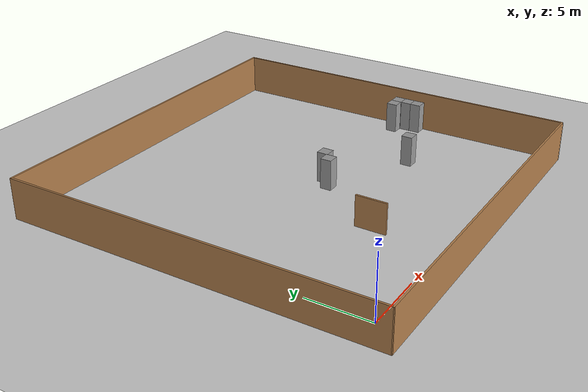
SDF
<sdf version="1.7">
 <world name="default">
  <model name="ground_plane">
   <static>1</static>
   <link name="link">
    <collision name="collision">
     <geometry><plane><normal>0 0 1</normal><size>100 100</size></plane></geometry>
     <surface><friction><ode><mu>100</mu><mu2>50</mu2></ode></friction></surface>
    </collision>
    <visual name="visual">
     <cast_shadows>0</cast_shadows>
     <geometry><plane><normal>0 0 1</normal><size>100 100</size></plane></geometry>
     <material>
      <script><uri>file://media/materials/scripts/gazebo.material</uri><name>Gazebo/Grey</name></script>
     </material>
    </visual>
   </link>
  </model>
  <model name="Untitled_0_clone_clone">
   <link name="Wall_31">
    <pose>-14.9249 0 0 0 0 -1.56374</pose>
    <inertial>
     <mass>1</mass>
     <inertia><ixx>1</ixx><ixy>0</ixy><ixz>0</ixz><iyy>1</iyy><iyz>0</iyz><izz>1</izz></inertia>
    </inertial>
    <visual name="Wall_31_Visual">
     <pose>0 0 1.25 0 -0 0</pose>
     <geometry><box><size>30.0711 0.15 4</size></box></geometry>
     <material>
      <script><uri>file://media/materials/scripts/gazebo.material</uri><name>Gazebo/Wood</name></script>
      <ambient>1 1 1 1</ambient>
      <shader type="pixel"><normal_map>__default__</normal_map></shader>
      <diffuse>0.7 0.7 0.7 1</diffuse>
      <specular>0.01 0.01 0.01 1</specular>
      <emissive>0 0 0 1</emissive>
     </material>
     <meta><layer>0</layer></meta>
    </visual>
    <collision name="Wall_31_Collision">
     <pose>0 0 1.25 0 -0 0</pose>
     <geometry><box><size>30.0711 0.15 4</size></box></geometry>
     <surface>
      <friction>
       <ode><mu>1</mu><mu2>1</mu2><fdir1>0 0 0</fdir1><slip1>0</slip1><slip2>0</slip2></ode>
       <torsional>
        <coefficient>1</coefficient>
        <patch_radius>0</patch_radius>
        <surface_radius>0</surface_radius>
        <use_patch_radius>1</use_patch_radius>
        <ode><slip>0</slip></ode>
       </torsional>
      </friction>
      <bounce><restitution_coefficient>0</restitution_coefficient><threshold>1e+06</threshold></bounce>
      <contact>
       <collide_without_contact>0</collide_without_contact>
       <collide_without_contact_bitmask>1</collide_without_contact_bitmask>
       <collide_bitmask>1</collide_bitmask>
       <ode>
        <soft_cfm>0</soft_cfm>
        <soft_erp>0.2</soft_erp>
        <kp>1e+13</kp>
        <kd>1</kd>
        <max_vel>0.01</max_vel>
        <min_depth>0</min_depth>
       </ode>
       <bullet>
        <split_impulse>1</split_impulse>
        <split_impulse_penetration_threshold>-0.01</split_impulse_penetration_threshold>
        <soft_cfm>0</soft_cfm>
        <soft_erp>0.2</soft_erp>
        <kp>1e+13</kp>
        <kd>1</kd>
       </bullet>
      </contact>
     </surface>
    </collision>
   </link>
   <link name="Wall_32">
    <pose>0.105683 -14.9481 0 0 -0 0.000807</pose>
    <inertial>
     <mass>1</mass>
     <inertia><ixx>1</ixx><ixy>0</ixy><ixz>0</ixz><iyy>1</iyy><iyz>0</iyz><izz>1</izz></inertia>
    </inertial>
    <visual name="Wall_32_Visual">
     <pose>0 0 1.25 0 -0 0</pose>
     <geometry><box><size>30 0.15 4</size></box></geometry>
     <material>
      <script><uri>file://media/materials/scripts/gazebo.material</uri><name>Gazebo/Wood</name></script>
      <ambient>1 1 1 1</ambient>
      <shader type="pixel"><normal_map>__default__</normal_map></shader>
      <diffuse>0.7 0.7 0.7 1</diffuse>
      <specular>0.01 0.01 0.01 1</specular>
      <emissive>0 0 0 1</emissive>
     </material>
     <meta><layer>0</layer></meta>
    </visual>
    <collision name="Wall_32_Collision">
     <pose>0 0 1.25 0 -0 0</pose>
     <geometry><box><size>30 0.15 4</size></box></geometry>
     <surface>
      <friction>
       <ode><mu>1</mu><mu2>1</mu2><fdir1>0 0 0</fdir1><slip1>0</slip1><slip2>0</slip2></ode>
       <torsional>
        <coefficient>1</coefficient>
        <patch_radius>0</patch_radius>
        <surface_radius>0</surface_radius>
        <use_patch_radius>1</use_patch_radius>
        <ode><slip>0</slip></ode>
       </torsional>
      </friction>
      <bounce><restitution_coefficient>0</restitution_coefficient><threshold>1e+06</threshold></bounce>
      <contact>
       <collide_without_contact>0</collide_without_contact>
       <collide_without_contact_bitmask>1</collide_without_contact_bitmask>
       <collide_bitmask>1</collide_bitmask>
       <ode>
        <soft_cfm>0</soft_cfm>
        <soft_erp>0.2</soft_erp>
        <kp>1e+13</kp>
        <kd>1</kd>
        <max_vel>0.01</max_vel>
        <min_depth>0</min_depth>
       </ode>
       <bullet>
        <split_impulse>1</split_impulse>
        <split_impulse_penetration_threshold>-0.01</split_impulse_penetration_threshold>
        <soft_cfm>0</soft_cfm>
        <soft_erp>0.2</soft_erp>
        <kp>1e+13</kp>
        <kd>1</kd>
       </bullet>
      </contact>
     </surface>
    </collision>
   </link>
   <link name="Wall_33">
    <pose>14.9844 -0.011083 0 0 -0 1.5739</pose>
    <inertial>
     <mass>1</mass>
     <inertia><ixx>1</ixx><ixy>0</ixy><ixz>0</ixz><iyy>1</iyy><iyz>0</iyz><izz>1</izz></inertia>
    </inertial>
    <visual name="Wall_33_Visual">
     <pose>0 0 1.25 0 -0 0</pose>
     <geometry><box><size>30.0001 0.15 4</size></box></geometry>
     <material>
      <script><uri>file://media/materials/scripts/gazebo.material</uri><name>Gazebo/Wood</name></script>
      <ambient>1 1 1 1</ambient>
      <shader type="pixel"><normal_map>__default__</normal_map></shader>
      <diffuse>0.7 0.7 0.7 1</diffuse>
      <specular>0.01 0.01 0.01 1</specular>
      <emissive>0 0 0 1</emissive>
     </material>
     <meta><layer>0</layer></meta>
    </visual>
    <collision name="Wall_33_Collision">
     <pose>0 0 1.25 0 -0 0</pose>
     <geometry><box><size>30.0001 0.15 4</size></box></geometry>
     <surface>
      <friction>
       <ode><mu>1</mu><mu2>1</mu2><fdir1>0 0 0</fdir1><slip1>0</slip1><slip2>0</slip2></ode>
       <torsional>
        <coefficient>1</coefficient>
        <patch_radius>0</patch_radius>
        <surface_radius>0</surface_radius>
        <use_patch_radius>1</use_patch_radius>
        <ode><slip>0</slip></ode>
       </torsional>
      </friction>
      <bounce><restitution_coefficient>0</restitution_coefficient><threshold>1e+06</threshold></bounce>
      <contact>
       <collide_without_contact>0</collide_without_contact>
       <collide_without_contact_bitmask>1</collide_without_contact_bitmask>
       <collide_bitmask>1</collide_bitmask>
       <ode>
        <soft_cfm>0</soft_cfm>
        <soft_erp>0.2</soft_erp>
        <kp>1e+13</kp>
        <kd>1</kd>
        <max_vel>0.01</max_vel>
        <min_depth>0</min_depth>
       </ode>
       <bullet>
        <split_impulse>1</split_impulse>
        <split_impulse_penetration_threshold>-0.01</split_impulse_penetration_threshold>
        <soft_cfm>0</soft_cfm>
        <soft_erp>0.2</soft_erp>
        <kp>1e+13</kp>
        <kd>1</kd>
       </bullet>
      </contact>
     </surface>
    </collision>
   </link>
   <link name="Wall_36">
    <pose>-0.035032 14.9602 0 0 -0 0</pose>
    <inertial>
     <mass>1</mass>
     <inertia><ixx>1</ixx><ixy>0</ixy><ixz>0</ixz><iyy>1</iyy><iyz>0</iyz><izz>1</izz></inertia>
    </inertial>
    <visual name="Wall_36_Visual">
     <pose>0 0 1.25 0 -0 0</pose>
     <geometry><box><size>30 0.15 4</size></box></geometry>
     <material>
      <script><uri>file://media/materials/scripts/gazebo.material</uri><name>Gazebo/Wood</name></script>
      <ambient>1 1 1 1</ambient>
      <shader type="pixel"><normal_map>__default__</normal_map></shader>
      <diffuse>0.7 0.7 0.7 1</diffuse>
      <specular>0.01 0.01 0.01 1</specular>
      <emissive>0 0 0 1</emissive>
     </material>
     <meta><layer>0</layer></meta>
    </visual>
    <collision name="Wall_36_Collision">
     <pose>0 0 1.25 0 -0 0</pose>
     <geometry><box><size>30 0.15 4</size></box></geometry>
     <surface>
      <friction>
       <ode><mu>1</mu><mu2>1</mu2><fdir1>0 0 0</fdir1><slip1>0</slip1><slip2>0</slip2></ode>
       <torsional>
        <coefficient>1</coefficient>
        <patch_radius>0</patch_radius>
        <surface_radius>0</surface_radius>
        <use_patch_radius>1</use_patch_radius>
        <ode><slip>0</slip></ode>
       </torsional>
      </friction>
      <bounce><restitution_coefficient>0</restitution_coefficient><threshold>1e+06</threshold></bounce>
      <contact>
       <collide_without_contact>0</collide_without_contact>
       <collide_without_contact_bitmask>1</collide_without_contact_bitmask>
       <collide_bitmask>1</collide_bitmask>
       <ode>
        <soft_cfm>0</soft_cfm>
        <soft_erp>0.2</soft_erp>
        <kp>1e+13</kp>
        <kd>1</kd>
        <max_vel>0.01</max_vel>
        <min_depth>0</min_depth>
       </ode>
       <bullet>
        <split_impulse>1</split_impulse>
        <split_impulse_penetration_threshold>-0.01</split_impulse_penetration_threshold>
        <soft_cfm>0</soft_cfm>
        <soft_erp>0.2</soft_erp>
        <kp>1e+13</kp>
        <kd>1</kd>
       </bullet>
      </contact>
     </surface>
    </collision>
   </link>
   <static>1</static>
   <pose>12.7356 12.8186 0 0 -0 0</pose>
  </model>
  <model name="Untitled_0_clone_clone_0">
   <link name="Wall_7_clone_clone_clone">
    <pose>-2.0846 -3.67298 0 0 -0 0</pose>
    <inertial>
     <mass>1</mass>
     <inertia><ixx>1</ixx><ixy>0</ixy><ixz>0</ixz><iyy>1</iyy><iyz>0</iyz><izz>1</izz></inertia>
    </inertial>
    <visual name="Wall_7_Visual">
     <pose>0 0 1.25 0 -0 1.5707</pose>
     <geometry><box><size>2.5 0.15 2.5</size></box></geometry>
     <material>
      <script><uri>file://media/materials/scripts/gazebo.material</uri><name>Gazebo/Wood</name></script>
      <ambient>1 1 1 1</ambient>
      <shader type="pixel"><normal_map>__default__</normal_map></shader>
      <diffuse>1 1 1 1</diffuse>
      <specular>0.2 0.2 0.2 1</specular>
      <emissive>0 0 0 1</emissive>
     </material>
     <meta><layer>0</layer></meta>
    </visual>
    <collision name="Wall_7_Collision">
     <pose>0 0 1.25 0 -0 1.57079</pose>
     <geometry><box><size>2.5 0.15 2.5</size></box></geometry>
     <surface>
      <friction>
       <ode><mu>1</mu><mu2>1</mu2><fdir1>0 0 0</fdir1><slip1>0</slip1><slip2>0</slip2></ode>
       <torsional>
        <coefficient>1</coefficient>
        <patch_radius>0</patch_radius>
        <surface_radius>0</surface_radius>
        <use_patch_radius>1</use_patch_radius>
        <ode><slip>0</slip></ode>
       </torsional>
      </friction>
      <bounce><restitution_coefficient>0</restitution_coefficient><threshold>1e+06</threshold></bounce>
      <contact>
       <collide_without_contact>0</collide_without_contact>
       <collide_without_contact_bitmask>1</collide_without_contact_bitmask>
       <collide_bitmask>1</collide_bitmask>
       <ode>
        <soft_cfm>0</soft_cfm>
        <soft_erp>0.2</soft_erp>
        <kp>1e+13</kp>
        <kd>1</kd>
        <max_vel>0.01</max_vel>
        <min_depth>0</min_depth>
       </ode>
       <bullet>
        <split_impulse>1</split_impulse>
        <split_impulse_penetration_threshold>-0.01</split_impulse_penetration_threshold>
        <soft_cfm>0</soft_cfm>
        <soft_erp>0.2</soft_erp>
        <kp>1e+13</kp>
        <kd>1</kd>
       </bullet>
      </contact>
     </surface>
    </collision>
   </link>
   <static>1</static>
   <pose>11.6372 9.09473 0 0 -0 0</pose>
  </model>
  <model name="unit_box">
   <link name="link_clone_0_clone_clone_3_clone_2_clone_32">
    <inertial>
     <mass>1</mass>
     <inertia>
      <ixx>0.166667</ixx>
      <ixy>0</ixy>
      <ixz>0</ixz>
      <iyy>0.166667</iyy>
      <iyz>0</iyz>
      <izz>0.166667</izz>
     </inertia>
    </inertial>
    <pose>19.6438 11.8163 0 0 -0 0</pose>
    <visual name="visual">
     <geometry><box><size>0.9 0.9 4</size></box></geometry>
     <material>
      <script><name>Gazebo/Grey</name><uri>file://media/materials/scripts/gazebo.material</uri></script>
      <shader type="pixel"><normal_map>__default__</normal_map></shader>
      <ambient>0.3 0.3 0.3 1</ambient>
      <diffuse>0.7 0.7 0.7 1</diffuse>
      <specular>0.01 0.01 0.01 1</specular>
      <emissive>0 0 0 1</emissive>
     </material>
    </visual>
    <collision name="collision">
     <geometry><box><size>0.9 0.9 4</size></box></geometry>
     <surface>
      <friction>
       <ode><mu>1</mu><mu2>1</mu2><fdir1>0 0 0</fdir1><slip1>0</slip1><slip2>0</slip2></ode>
       <torsional>
        <coefficient>1</coefficient>
        <patch_radius>0</patch_radius>
        <surface_radius>0</surface_radius>
        <use_patch_radius>1</use_patch_radius>
        <ode><slip>0</slip></ode>
       </torsional>
      </friction>
      <bounce><restitution_coefficient>0</restitution_coefficient><threshold>1e+06</threshold></bounce>
      <contact>
       <collide_without_contact>0</collide_without_contact>
       <collide_without_contact_bitmask>1</collide_without_contact_bitmask>
       <collide_bitmask>1</collide_bitmask>
       <ode>
        <soft_cfm>0</soft_cfm>
        <soft_erp>0.2</soft_erp>
        <kp>1e+13</kp>
        <kd>1</kd>
        <max_vel>0.01</max_vel>
        <min_depth>0</min_depth>
       </ode>
       <bullet>
        <split_impulse>1</split_impulse>
        <split_impulse_penetration_threshold>-0.01</split_impulse_penetration_threshold>
        <soft_cfm>0</soft_cfm>
        <soft_erp>0.2</soft_erp>
        <kp>1e+13</kp>
        <kd>1</kd>
       </bullet>
      </contact>
     </surface>
    </collision>
   </link>
   <link name="link_clone_0_clone_clone_3_clone_2_clone_37">
    <inertial>
     <mass>1</mass>
     <inertia>
      <ixx>0.166667</ixx>
      <ixy>0</ixy>
      <ixz>0</ixz>
      <iyy>0.166667</iyy>
      <iyz>0</iyz>
      <izz>0.166667</izz>
     </inertia>
    </inertial>
    <pose>13.2375 9.46863 0 0 -0 0</pose>
    <visual name="visual">
     <geometry><box><size>0.9 0.9 4</size></box></geometry>
     <material>
      <script><name>Gazebo/Grey</name><uri>file://media/materials/scripts/gazebo.material</uri></script>
      <shader type="pixel"><normal_map>__default__</normal_map></shader>
      <ambient>0.3 0.3 0.3 1</ambient>
      <diffuse>0.7 0.7 0.7 1</diffuse>
      <specular>0.01 0.01 0.01 1</specular>
      <emissive>0 0 0 1</emissive>
     </material>
    </visual>
    <collision name="collision">
     <geometry><box><size>0.9 0.9 4</size></box></geometry>
     <surface>
      <friction>
       <ode><mu>1</mu><mu2>1</mu2><fdir1>0 0 0</fdir1><slip1>0</slip1><slip2>0</slip2></ode>
       <torsional>
        <coefficient>1</coefficient>
        <patch_radius>0</patch_radius>
        <surface_radius>0</surface_radius>
        <use_patch_radius>1</use_patch_radius>
        <ode><slip>0</slip></ode>
       </torsional>
      </friction>
      <bounce><restitution_coefficient>0</restitution_coefficient><threshold>1e+06</threshold></bounce>
      <contact>
       <collide_without_contact>0</collide_without_contact>
       <collide_without_contact_bitmask>1</collide_without_contact_bitmask>
       <collide_bitmask>1</collide_bitmask>
       <ode>
        <soft_cfm>0</soft_cfm>
        <soft_erp>0.2</soft_erp>
        <kp>1e+13</kp>
        <kd>1</kd>
        <max_vel>0.01</max_vel>
        <min_depth>0</min_depth>
       </ode>
       <bullet>
        <split_impulse>1</split_impulse>
        <split_impulse_penetration_threshold>-0.01</split_impulse_penetration_threshold>
        <soft_cfm>0</soft_cfm>
        <soft_erp>0.2</soft_erp>
        <kp>1e+13</kp>
        <kd>1</kd>
       </bullet>
      </contact>
     </surface>
    </collision>
   </link>
   <link name="link_clone_0_clone_clone_3_clone_2_clone_39">
    <inertial>
     <mass>1</mass>
     <inertia>
      <ixx>0.166667</ixx>
      <ixy>0</ixy>
      <ixz>0</ixz>
      <iyy>0.166667</iyy>
      <iyz>0</iyz>
      <izz>0.166667</izz>
     </inertia>
    </inertial>
    <pose>19.6362 12.7063 0 0 -0 0</pose>
    <visual name="visual">
     <geometry><box><size>0.9 0.9 4</size></box></geometry>
     <material>
      <script><name>Gazebo/Grey</name><uri>file://media/materials/scripts/gazebo.material</uri></script>
      <shader type="pixel"><normal_map>__default__</normal_map></shader>
      <ambient>0.3 0.3 0.3 1</ambient>
      <diffuse>0.7 0.7 0.7 1</diffuse>
      <specular>0.01 0.01 0.01 1</specular>
      <emissive>0 0 0 1</emissive>
     </material>
    </visual>
    <collision name="collision">
     <geometry><box><size>0.9 0.9 4</size></box></geometry>
     <surface>
      <friction>
       <ode><mu>1</mu><mu2>1</mu2><fdir1>0 0 0</fdir1><slip1>0</slip1><slip2>0</slip2></ode>
       <torsional>
        <coefficient>1</coefficient>
        <patch_radius>0</patch_radius>
        <surface_radius>0</surface_radius>
        <use_patch_radius>1</use_patch_radius>
        <ode><slip>0</slip></ode>
       </torsional>
      </friction>
      <bounce><restitution_coefficient>0</restitution_coefficient><threshold>1e+06</threshold></bounce>
      <contact>
       <collide_without_contact>0</collide_without_contact>
       <collide_without_contact_bitmask>1</collide_without_contact_bitmask>
       <collide_bitmask>1</collide_bitmask>
       <ode>
        <soft_cfm>0</soft_cfm>
        <soft_erp>0.2</soft_erp>
        <kp>1e+13</kp>
        <kd>1</kd>
        <max_vel>0.01</max_vel>
        <min_depth>0</min_depth>
       </ode>
       <bullet>
        <split_impulse>1</split_impulse>
        <split_impulse_penetration_threshold>-0.01</split_impulse_penetration_threshold>
        <soft_cfm>0</soft_cfm>
        <soft_erp>0.2</soft_erp>
        <kp>1e+13</kp>
        <kd>1</kd>
       </bullet>
      </contact>
     </surface>
    </collision>
   </link>
   <link name="link_clone_0_clone_clone_3_clone_2_clone_40">
    <inertial>
     <mass>1</mass>
     <inertia>
      <ixx>0.166667</ixx>
      <ixy>0</ixy>
      <ixz>0</ixz>
      <iyy>0.166667</iyy>
      <iyz>0</iyz>
      <izz>0.166667</izz>
     </inertia>
    </inertial>
    <pose>19.6349 13.5789 0 0 -0 0</pose>
    <visual name="visual">
     <geometry><box><size>0.9 0.9 4</size></box></geometry>
     <material>
      <script><name>Gazebo/Grey</name><uri>file://media/materials/scripts/gazebo.material</uri></script>
      <shader type="pixel"><normal_map>__default__</normal_map></shader>
      <ambient>0.3 0.3 0.3 1</ambient>
      <diffuse>0.7 0.7 0.7 1</diffuse>
      <specular>0.01 0.01 0.01 1</specular>
      <emissive>0 0 0 1</emissive>
     </material>
    </visual>
    <collision name="collision">
     <geometry><box><size>0.9 0.9 4</size></box></geometry>
     <surface>
      <friction>
       <ode><mu>1</mu><mu2>1</mu2><fdir1>0 0 0</fdir1><slip1>0</slip1><slip2>0</slip2></ode>
       <torsional>
        <coefficient>1</coefficient>
        <patch_radius>0</patch_radius>
        <surface_radius>0</surface_radius>
        <use_patch_radius>1</use_patch_radius>
        <ode><slip>0</slip></ode>
       </torsional>
      </friction>
      <bounce><restitution_coefficient>0</restitution_coefficient><threshold>1e+06</threshold></bounce>
      <contact>
       <collide_without_contact>0</collide_without_contact>
       <collide_without_contact_bitmask>1</collide_without_contact_bitmask>
       <collide_bitmask>1</collide_bitmask>
       <ode>
        <soft_cfm>0</soft_cfm>
        <soft_erp>0.2</soft_erp>
        <kp>1e+13</kp>
        <kd>1</kd>
        <max_vel>0.01</max_vel>
        <min_depth>0</min_depth>
       </ode>
       <bullet>
        <split_impulse>1</split_impulse>
        <split_impulse_penetration_threshold>-0.01</split_impulse_penetration_threshold>
        <soft_cfm>0</soft_cfm>
        <soft_erp>0.2</soft_erp>
        <kp>1e+13</kp>
        <kd>1</kd>
       </bullet>
      </contact>
     </surface>
    </collision>
   </link>
   <link name="link_clone_0_clone_clone_3_clone_2_clone_42">
    <inertial>
     <mass>1</mass>
     <inertia>
      <ixx>0.166667</ixx>
      <ixy>0</ixy>
      <ixz>0</ixz>
      <iyy>0.166667</iyy>
      <iyz>0</iyz>
      <izz>0.166667</izz>
     </inertia>
    </inertial>
    <pose>18.7644 13.5939 0 0 -0 0</pose>
    <visual name="visual">
     <geometry><box><size>0.9 0.9 4</size></box></geometry>
     <material>
      <script><name>Gazebo/Grey</name><uri>file://media/materials/scripts/gazebo.material</uri></script>
      <shader type="pixel"><normal_map>__default__</normal_map></shader>
      <ambient>0.3 0.3 0.3 1</ambient>
      <diffuse>0.7 0.7 0.7 1</diffuse>
      <specular>0.01 0.01 0.01 1</specular>
      <emissive>0 0 0 1</emissive>
     </material>
    </visual>
    <collision name="collision">
     <geometry><box><size>0.9 0.9 4</size></box></geometry>
     <surface>
      <friction>
       <ode><mu>1</mu><mu2>1</mu2><fdir1>0 0 0</fdir1><slip1>0</slip1><slip2>0</slip2></ode>
       <torsional>
        <coefficient>1</coefficient>
        <patch_radius>0</patch_radius>
        <surface_radius>0</surface_radius>
        <use_patch_radius>1</use_patch_radius>
        <ode><slip>0</slip></ode>
       </torsional>
      </friction>
      <bounce><restitution_coefficient>0</restitution_coefficient><threshold>1e+06</threshold></bounce>
      <contact>
       <collide_without_contact>0</collide_without_contact>
       <collide_without_contact_bitmask>1</collide_without_contact_bitmask>
       <collide_bitmask>1</collide_bitmask>
       <ode>
        <soft_cfm>0</soft_cfm>
        <soft_erp>0.2</soft_erp>
        <kp>1e+13</kp>
        <kd>1</kd>
        <max_vel>0.01</max_vel>
        <min_depth>0</min_depth>
       </ode>
       <bullet>
        <split_impulse>1</split_impulse>
        <split_impulse_penetration_threshold>-0.01</split_impulse_penetration_threshold>
        <soft_cfm>0</soft_cfm>
        <soft_erp>0.2</soft_erp>
        <kp>1e+13</kp>
        <kd>1</kd>
       </bullet>
      </contact>
     </surface>
    </collision>
   </link>
   <link name="link_clone_0_clone_clone_3_clone_2_clone_54">
    <inertial>
     <mass>1</mass>
     <inertia>
      <ixx>0.166667</ixx>
      <ixy>0</ixy>
      <ixz>0</ixz>
      <iyy>0.166667</iyy>
      <iyz>0</iyz>
      <izz>0.166667</izz>
     </inertia>
    </inertial>
    <pose>6.24208 12.8125 0 0 -0 0</pose>
    <visual name="visual">
     <geometry><box><size>0.9 0.9 4</size></box></geometry>
     <material>
      <script><name>Gazebo/Grey</name><uri>file://media/materials/scripts/gazebo.material</uri></script>
      <shader type="pixel"><normal_map>__default__</normal_map></shader>
      <ambient>0.3 0.3 0.3 1</ambient>
      <diffuse>0.7 0.7 0.7 1</diffuse>
      <specular>0.01 0.01 0.01 1</specular>
      <emissive>0 0 0 1</emissive>
     </material>
    </visual>
    <collision name="collision">
     <geometry><box><size>0.9 0.9 4</size></box></geometry>
     <surface>
      <friction>
       <ode><mu>1</mu><mu2>1</mu2><fdir1>0 0 0</fdir1><slip1>0</slip1><slip2>0</slip2></ode>
       <torsional>
        <coefficient>1</coefficient>
        <patch_radius>0</patch_radius>
        <surface_radius>0</surface_radius>
        <use_patch_radius>1</use_patch_radius>
        <ode><slip>0</slip></ode>
       </torsional>
      </friction>
      <bounce><restitution_coefficient>0</restitution_coefficient><threshold>1e+06</threshold></bounce>
      <contact>
       <collide_without_contact>0</collide_without_contact>
       <collide_without_contact_bitmask>1</collide_without_contact_bitmask>
       <collide_bitmask>1</collide_bitmask>
       <ode>
        <soft_cfm>0</soft_cfm>
        <soft_erp>0.2</soft_erp>
        <kp>1e+13</kp>
        <kd>1</kd>
        <max_vel>0.01</max_vel>
        <min_depth>0</min_depth>
       </ode>
       <bullet>
        <split_impulse>1</split_impulse>
        <split_impulse_penetration_threshold>-0.01</split_impulse_penetration_threshold>
        <soft_cfm>0</soft_cfm>
        <soft_erp>0.2</soft_erp>
        <kp>1e+13</kp>
        <kd>1</kd>
       </bullet>
      </contact>
     </surface>
    </collision>
   </link>
   <link name="link_clone_0_clone_clone_3_clone_2_clone_55">
    <inertial>
     <mass>1</mass>
     <inertia>
      <ixx>0.166667</ixx>
      <ixy>0</ixy>
      <ixz>0</ixz>
      <iyy>0.166667</iyy>
      <iyz>0</iyz>
      <izz>0.166667</izz>
     </inertia>
    </inertial>
    <pose>7.11895 13.6193 0 0 -0 0</pose>
    <visual name="visual">
     <geometry><box><size>0.9 0.9 4</size></box></geometry>
     <material>
      <script><name>Gazebo/Grey</name><uri>file://media/materials/scripts/gazebo.material</uri></script>
      <shader type="pixel"><normal_map>__default__</normal_map></shader>
      <ambient>0.3 0.3 0.3 1</ambient>
      <diffuse>0.7 0.7 0.7 1</diffuse>
      <specular>0.01 0.01 0.01 1</specular>
      <emissive>0 0 0 1</emissive>
     </material>
    </visual>
    <collision name="collision">
     <geometry><box><size>0.9 0.9 4</size></box></geometry>
     <surface>
      <friction>
       <ode><mu>1</mu><mu2>1</mu2><fdir1>0 0 0</fdir1><slip1>0</slip1><slip2>0</slip2></ode>
       <torsional>
        <coefficient>1</coefficient>
        <patch_radius>0</patch_radius>
        <surface_radius>0</surface_radius>
        <use_patch_radius>1</use_patch_radius>
        <ode><slip>0</slip></ode>
       </torsional>
      </friction>
      <bounce><restitution_coefficient>0</restitution_coefficient><threshold>1e+06</threshold></bounce>
      <contact>
       <collide_without_contact>0</collide_without_contact>
       <collide_without_contact_bitmask>1</collide_without_contact_bitmask>
       <collide_bitmask>1</collide_bitmask>
       <ode>
        <soft_cfm>0</soft_cfm>
        <soft_erp>0.2</soft_erp>
        <kp>1e+13</kp>
        <kd>1</kd>
        <max_vel>0.01</max_vel>
        <min_depth>0</min_depth>
       </ode>
       <bullet>
        <split_impulse>1</split_impulse>
        <split_impulse_penetration_threshold>-0.01</split_impulse_penetration_threshold>
        <soft_cfm>0</soft_cfm>
        <soft_erp>0.2</soft_erp>
        <kp>1e+13</kp>
        <kd>1</kd>
       </bullet>
      </contact>
     </surface>
    </collision>
   </link>
   <static>0</static>
   <pose>7.51627 -1.49726 0.45 0 -0 0</pose>
  </model>
 </world>
</sdf>
